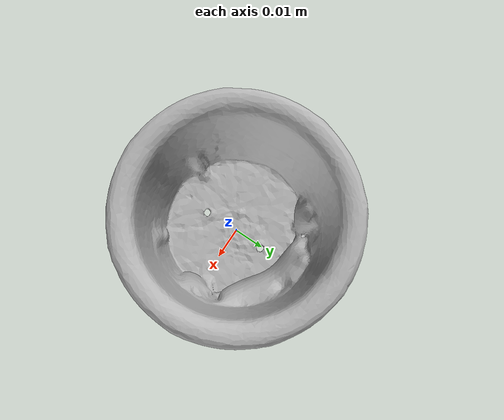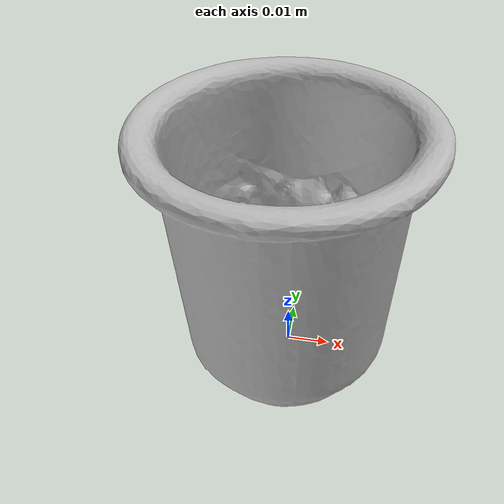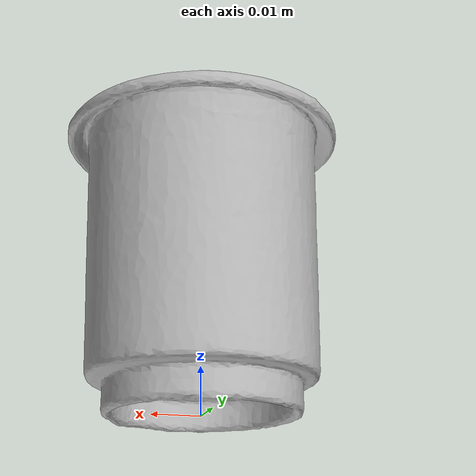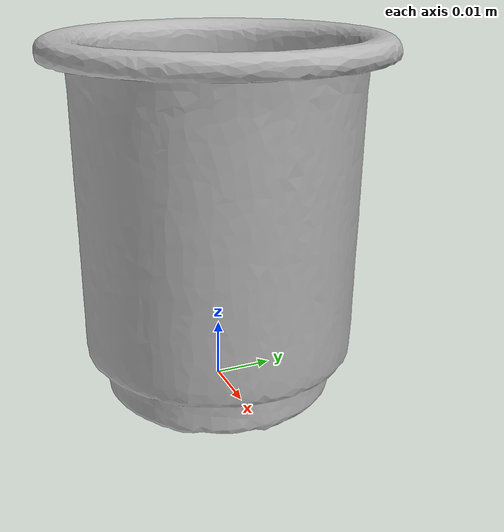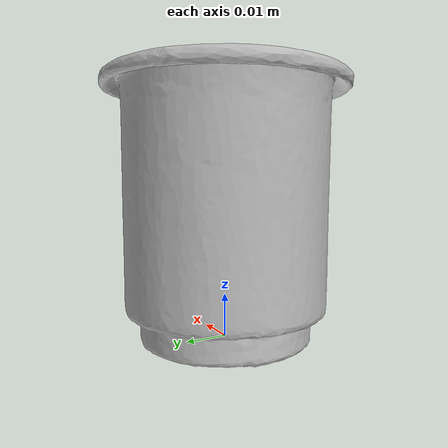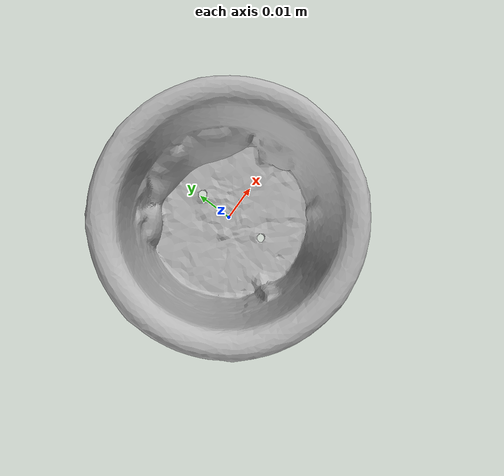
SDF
<?xml version="1.0" ?>
<sdf version='1.8'>
  <model name='ycb_065-a_cups'>
    <link name='body'>
      <inertial>
        <mass>0.038</mass>
        <pose>0.00120456543 0.00265760261 0.028754527 0 0 0</pose>
        <inertia>
          <ixx>2.10173726358e-05</ixx>
          <ixy>-1.60411179819e-07</ixy>
          <ixz>3.26994464834e-07</ixz>
          <iyy>2.07012595933e-05</iyy>
          <iyz>8.47491276854e-07</iyz>
          <izz>1.76683865323e-05</izz>
        </inertia>
      </inertial>
      <visual name='ycb_065-a_cups_visual'>
        <pose>0.031747 0.045326 0.000297 0 0 0</pose>
        <geometry>
          <mesh>
            <uri>model://ycb_065-a_cups/meshes/textured.dae</uri>
          </mesh>
        </geometry>
      </visual>
      <collision name='ycb_065-a_cups_collision'>
        <pose>0.031747 0.045326 0.000297 0 0 0</pose>
        <geometry>
          <mesh>
            <uri>model://ycb_065-a_cups/meshes/nontextured.stl</uri>
          </mesh>
        </geometry>
        <max_contacts>10</max_contacts>
        <surface>
          <contact>
            <ode>
              <kp>1e15</kp>
              <kd>1e13</kd>
            </ode>
          </contact>
        </surface>
      </collision>
    </link>
  </model>
</sdf>
